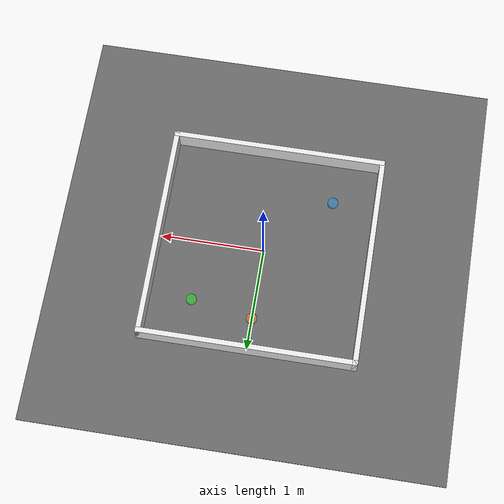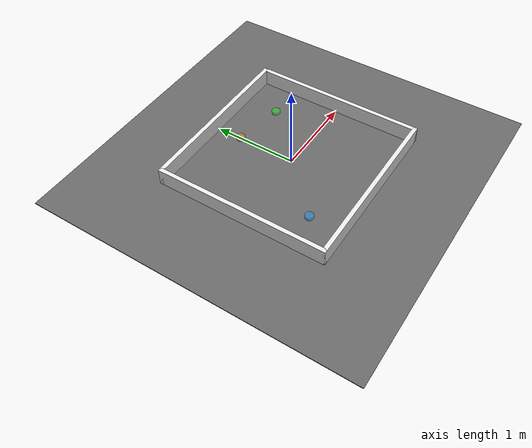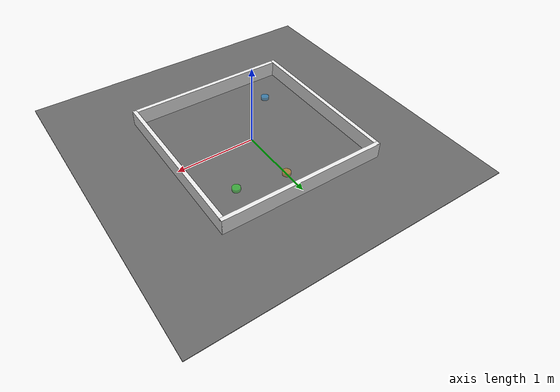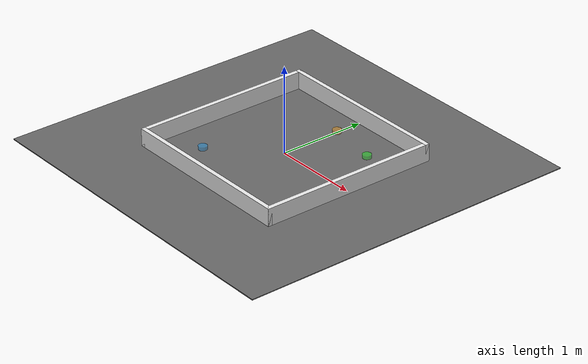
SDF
<sdf version="1.9">
 <world name="vector_arena">
  <physics name="1ms" type="ignored">
   <max_step_size>0.001</max_step_size>
   <real_time_factor>1.0</real_time_factor>
  </physics>
  <plugin filename="gz-sim-physics-system" name="gz::sim::systems::Physics"/>
  <plugin filename="gz-sim-user-commands-system" name="gz::sim::systems::UserCommands"/>
  <plugin filename="gz-sim-scene-broadcaster-system" name="gz::sim::systems::SceneBroadcaster"/>
  <plugin filename="gz-sim-contact-system" name="gz::sim::systems::Contact"/>
  <light name="sun" type="directional">
   <pose>0 0 10 0 0 0</pose>
   <diffuse>0.8 0.8 0.8 1</diffuse>
   <specular>0.2 0.2 0.2 1</specular>
   <direction>-0.5 0.1 -0.9</direction>
  </light>
  <model name="floor">
   <static>true</static>
   <pose>0 0 -0.005 0 0 0</pose>
   <link name="floor_link">
    <collision name="floor_col"><geometry><box><size>4 4 0.01</size></box></geometry></collision>
    <visual name="floor_vis">
     <geometry><box><size>4 4 0.01</size></box></geometry>
     <material><ambient>0.3 0.3 0.3 1</ambient><diffuse>0.4 0.4 0.4 1</diffuse></material>
    </visual>
   </link>
  </model>
  <model name="wall_east">
   <static>true</static>
   <pose>1.025 0 0.1 0 0 0</pose>
   <link name="link">
    <collision name="col"><geometry><box><size>0.05 2.1 0.2</size></box></geometry></collision>
    <visual name="vis">
     <geometry><box><size>0.05 2.1 0.2</size></box></geometry>
     <material><ambient>0.9 0.9 0.9 1</ambient><diffuse>0.9 0.9 0.9 1</diffuse></material>
    </visual>
   </link>
  </model>
  <model name="wall_west">
   <static>true</static>
   <pose>-1.025 0 0.1 0 0 0</pose>
   <link name="link">
    <collision name="col"><geometry><box><size>0.05 2.1 0.2</size></box></geometry></collision>
    <visual name="vis">
     <geometry><box><size>0.05 2.1 0.2</size></box></geometry>
     <material><ambient>0.9 0.9 0.9 1</ambient><diffuse>0.9 0.9 0.9 1</diffuse></material>
    </visual>
   </link>
  </model>
  <model name="wall_north">
   <static>true</static>
   <pose>0 1.025 0.1 0 0 0</pose>
   <link name="link">
    <collision name="col"><geometry><box><size>2.1 0.05 0.2</size></box></geometry></collision>
    <visual name="vis">
     <geometry><box><size>2.1 0.05 0.2</size></box></geometry>
     <material><ambient>0.9 0.9 0.9 1</ambient><diffuse>0.9 0.9 0.9 1</diffuse></material>
    </visual>
   </link>
  </model>
  <model name="wall_south">
   <static>true</static>
   <pose>0 -1.025 0.1 0 0 0</pose>
   <link name="link">
    <collision name="col"><geometry><box><size>2.1 0.05 0.2</size></box></geometry></collision>
    <visual name="vis">
     <geometry><box><size>2.1 0.05 0.2</size></box></geometry>
     <material><ambient>0.9 0.9 0.9 1</ambient><diffuse>0.9 0.9 0.9 1</diffuse></material>
    </visual>
   </link>
  </model>
  <model name="goal0">
   <static>true</static>
   <pose>0.6 0.6 0.02 0 0 0</pose>
   <link name="link">
    <visual name="vis">
     <geometry><cylinder><radius>0.05</radius><length>0.04</length></cylinder></geometry>
     <material>
      <ambient>0 0.8 0 0.4</ambient>
      <diffuse>0 1.0 0 0.4</diffuse>
      <emissive>0 0.3 0 0.2</emissive>
     </material>
     <transparency>0.5</transparency>
    </visual>
   </link>
  </model>
  <model name="goal1">
   <static>true</static>
   <pose>-0.6 -0.6 0.02 0 0 0</pose>
   <link name="link">
    <visual name="vis">
     <geometry><cylinder><radius>0.05</radius><length>0.04</length></cylinder></geometry>
     <material>
      <ambient>0 0.5 0.8 0.4</ambient>
      <diffuse>0 0.6 1.0 0.4</diffuse>
      <emissive>0 0.2 0.3 0.2</emissive>
     </material>
     <transparency>0.5</transparency>
    </visual>
   </link>
  </model>
  <model name="goal2">
   <static>true</static>
   <pose>0.0 0.7 0.02 0 0 0</pose>
   <link name="link">
    <visual name="vis">
     <geometry><cylinder><radius>0.05</radius><length>0.04</length></cylinder></geometry>
     <material>
      <ambient>0.9 0.5 0.0 0.4</ambient>
      <diffuse>1.0 0.6 0.0 0.4</diffuse>
      <emissive>0.4 0.2 0.0 0.2</emissive>
     </material>
     <transparency>0.5</transparency>
    </visual>
   </link>
  </model>
 </world>
</sdf>
